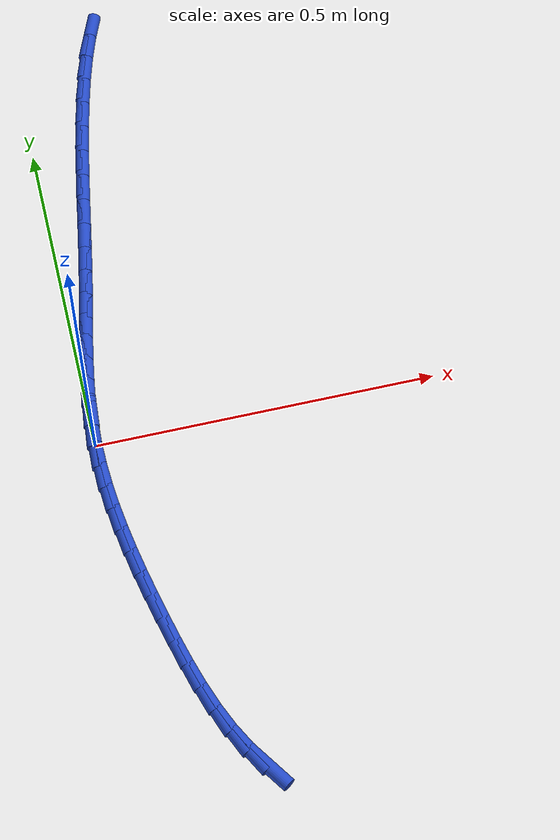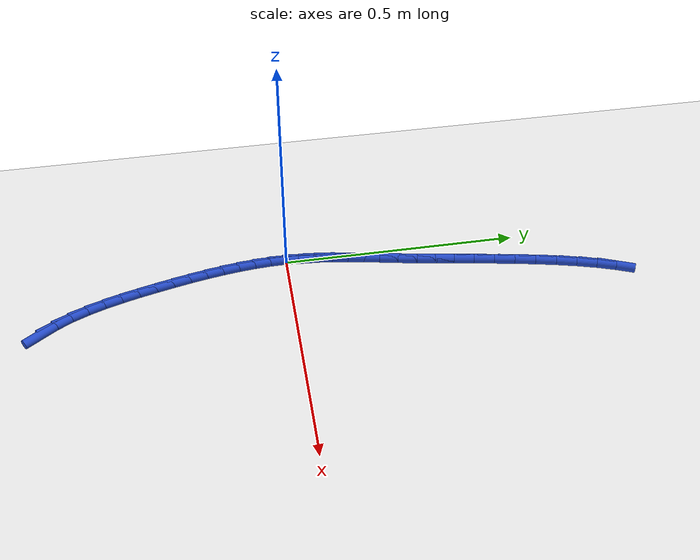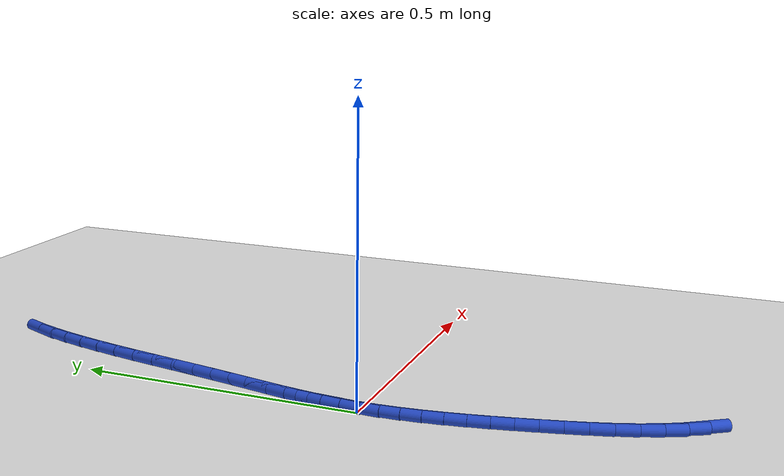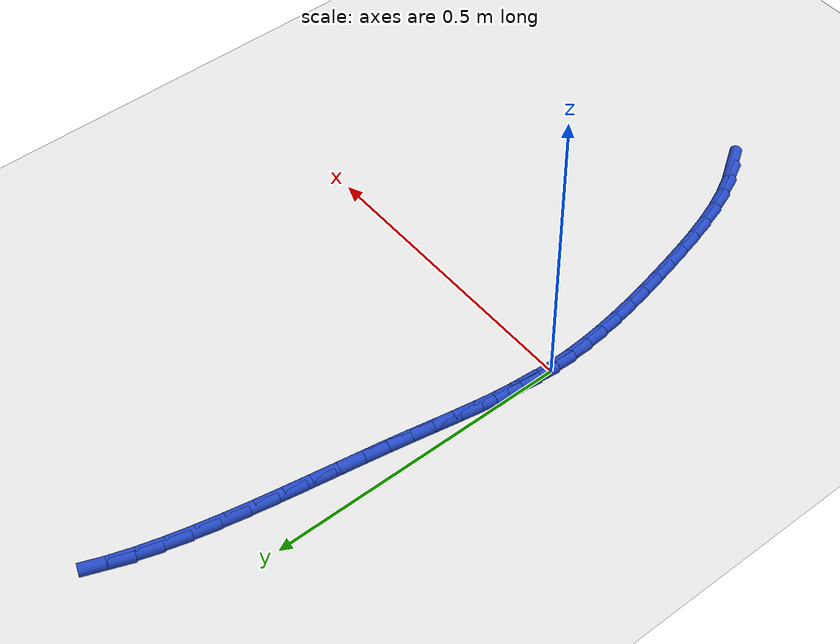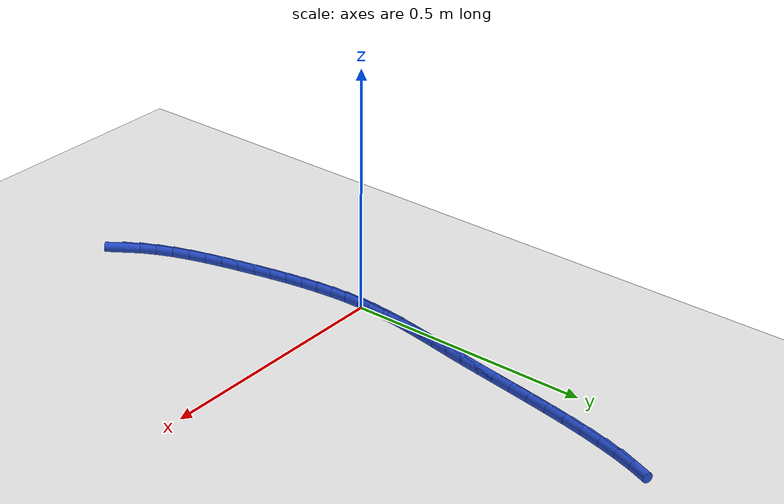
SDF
<sdf version="1.6">
 <world name="default">
  <model name="ground_plane">
   <static>1</static>
   <link name="link">
    <collision name="collision">
     <geometry><plane><normal>0 0 1</normal><size>100 100</size></plane></geometry>
     <surface><friction><ode><mu>100</mu><mu2>50</mu2></ode></friction></surface>
    </collision>
    <visual name="visual">
     <cast_shadows>0</cast_shadows>
     <geometry><plane><normal>0 0 1</normal><size>100 100</size></plane></geometry>
     <material>
      <script><uri>file://media/materials/scripts/gazebo.material</uri><name>Gazebo/WhiteGlow</name></script>
     </material>
    </visual>
   </link>
  </model>
  <model name="line">
   <link name="link_0">
    <pose>-2.2551405187698492e-17 -2.7755575615628914e-17 0.01 0 1.57 1.5317768246908199</pose>
    <collision name="collision">
     <geometry><cylinder><radius>0.01</radius><length>0.08</length></cylinder></geometry>
    </collision>
    <visual name="visual">
     <material>
      <script><name>Gazebo/Blue</name><uri>file://media/materials/scripts/gazebo.material</uri></script>
     </material>
     <geometry><cylinder><radius>0.01</radius><length>0.08</length></cylinder></geometry>
    </visual>
   </link>
   <link name="link_1">
    <pose>0.0012909038700178494 0.0330667638219513 0.01 0 1.57 1.4855187835141996</pose>
    <collision name="collision">
     <geometry><cylinder><radius>0.01</radius><length>0.08</length></cylinder></geometry>
    </collision>
    <visual name="visual">
     <material>
      <script><name>Gazebo/Blue</name><uri>file://media/materials/scripts/gazebo.material</uri></script>
     </material>
     <geometry><cylinder><radius>0.01</radius><length>0.08</length></cylinder></geometry>
    </visual>
   </link>
   <link name="link_2">
    <pose>0.004107158025258242 0.06601124007584636 0.01 0 1.57 1.4474695632081067</pose>
    <collision name="collision">
     <geometry><cylinder><radius>0.01</radius><length>0.08</length></cylinder></geometry>
    </collision>
    <visual name="visual">
     <material>
      <script><name>Gazebo/Blue</name><uri>file://media/materials/scripts/gazebo.material</uri></script>
     </material>
     <geometry><cylinder><radius>0.01</radius><length>0.08</length></cylinder></geometry>
    </visual>
   </link>
   <link name="link_3">
    <pose>0.008212593873302988 0.09913138959905807 0.01 0 1.57 1.4184327268474815</pose>
    <collision name="collision">
     <geometry><cylinder><radius>0.01</radius><length>0.08</length></cylinder></geometry>
    </collision>
    <visual name="visual">
     <material>
      <script><name>Gazebo/Blue</name><uri>file://media/materials/scripts/gazebo.material</uri></script>
     </material>
     <geometry><cylinder><radius>0.01</radius><length>0.08</length></cylinder></geometry>
    </visual>
   </link>
   <link name="link_4">
    <pose>0.013371042821733915 0.1327251732289593 0.01 0 1.57 1.3986420646731026</pose>
    <collision name="collision">
     <geometry><cylinder><radius>0.01</radius><length>0.08</length></cylinder></geometry>
    </collision>
    <visual name="visual">
     <material>
      <script><name>Gazebo/Blue</name><uri>file://media/materials/scripts/gazebo.material</uri></script>
     </material>
     <geometry><cylinder><radius>0.01</radius><length>0.08</length></cylinder></geometry>
    </visual>
   </link>
   <link name="link_5">
    <pose>0.019346336278132866 0.16709055180292298 0.01 0 1.57 1.3878507393659656</pose>
    <collision name="collision">
     <geometry><cylinder><radius>0.01</radius><length>0.08</length></cylinder></geometry>
    </collision>
    <visual name="visual">
     <material>
      <script><name>Gazebo/Blue</name><uri>file://media/materials/scripts/gazebo.material</uri></script>
     </material>
     <geometry><cylinder><radius>0.01</radius><length>0.08</length></cylinder></geometry>
    </visual>
   </link>
   <link name="link_6">
    <pose>0.02590230565008166 0.2025254861583219 0.01 0 1.57 1.38544792695444</pose>
    <collision name="collision">
     <geometry><cylinder><radius>0.01</radius><length>0.08</length></cylinder></geometry>
    </collision>
    <visual name="visual">
     <material>
      <script><name>Gazebo/Blue</name><uri>file://media/materials/scripts/gazebo.material</uri></script>
     </material>
     <geometry><cylinder><radius>0.01</radius><length>0.08</length></cylinder></geometry>
    </visual>
   </link>
   <link name="link_7">
    <pose>0.03280278234516214 0.23932793713252892 0.01 0 1.57 1.3905742868097946</pose>
    <collision name="collision">
     <geometry><cylinder><radius>0.01</radius><length>0.08</length></cylinder></geometry>
    </collision>
    <visual name="visual">
     <material>
      <script><name>Gazebo/Blue</name><uri>file://media/materials/scripts/gazebo.material</uri></script>
     </material>
     <geometry><cylinder><radius>0.01</radius><length>0.08</length></cylinder></geometry>
    </visual>
   </link>
   <link name="link_8">
    <pose>0.03981159777095613 0.277795865562917 0.01 0 1.57 1.400694542232976</pose>
    <collision name="collision">
     <geometry><cylinder><radius>0.01</radius><length>0.08</length></cylinder></geometry>
    </collision>
    <visual name="visual">
     <material>
      <script><name>Gazebo/Blue</name><uri>file://media/materials/scripts/gazebo.material</uri></script>
     </material>
     <geometry><cylinder><radius>0.01</radius><length>0.08</length></cylinder></geometry>
    </visual>
   </link>
   <link name="link_9">
    <pose>0.0467401160785049 0.3181338572605922 0.01 0 1.57 1.4072329902828762</pose>
    <collision name="collision">
     <geometry><cylinder><radius>0.01</radius><length>0.08</length></cylinder></geometry>
    </collision>
    <visual name="visual">
     <material>
      <script><name>Gazebo/Blue</name><uri>file://media/materials/scripts/gazebo.material</uri></script>
     </material>
     <geometry><cylinder><radius>0.01</radius><length>0.08</length></cylinder></geometry>
    </visual>
   </link>
   <link name="link_10">
    <pose>0.05365653463498634 0.36004196565418894 0.01 0 1.57 1.4081199562918991</pose>
    <collision name="collision">
     <geometry><cylinder><radius>0.01</radius><length>0.08</length></cylinder></geometry>
    </collision>
    <visual name="visual">
     <material>
      <script><name>Gazebo/Blue</name><uri>file://media/materials/scripts/gazebo.material</uri></script>
     </material>
     <geometry><cylinder><radius>0.01</radius><length>0.08</length></cylinder></geometry>
    </visual>
   </link>
   <link name="link_11">
    <pose>0.06071540281543947 0.40305061119062474 0.01 0 1.57 1.4038046841401903</pose>
    <collision name="collision">
     <geometry><cylinder><radius>0.01</radius><length>0.08</length></cylinder></geometry>
    </collision>
    <visual name="visual">
     <material>
      <script><name>Gazebo/Blue</name><uri>file://media/materials/scripts/gazebo.material</uri></script>
     </material>
     <geometry><cylinder><radius>0.01</radius><length>0.08</length></cylinder></geometry>
    </visual>
   </link>
   <link name="link_12">
    <pose>0.06807133447739407 0.446690087645099 0.01 0 1.57 1.3943956237105248</pose>
    <collision name="collision">
     <geometry><cylinder><radius>0.01</radius><length>0.08</length></cylinder></geometry>
    </collision>
    <visual name="visual">
     <material>
      <script><name>Gazebo/Blue</name><uri>file://media/materials/scripts/gazebo.material</uri></script>
     </material>
     <geometry><cylinder><radius>0.01</radius><length>0.08</length></cylinder></geometry>
    </visual>
   </link>
   <link name="link_13">
    <pose>0.07587894347837983 0.4904906887928109 0.01 0 1.57 1.3796985251317877</pose>
    <collision name="collision">
     <geometry><cylinder><radius>0.01</radius><length>0.08</length></cylinder></geometry>
    </collision>
    <visual name="visual">
     <material>
      <script><name>Gazebo/Blue</name><uri>file://media/materials/scripts/gazebo.material</uri></script>
     </material>
     <geometry><cylinder><radius>0.01</radius><length>0.08</length></cylinder></geometry>
    </visual>
   </link>
   <link name="link_14">
    <pose>0.08429284367592652 0.53398270840896 0.01 0 1.57 1.3592136734023892</pose>
    <collision name="collision">
     <geometry><cylinder><radius>0.01</radius><length>0.08</length></cylinder></geometry>
    </collision>
    <visual name="visual">
     <material>
      <script><name>Gazebo/Blue</name><uri>file://media/materials/scripts/gazebo.material</uri></script>
     </material>
     <geometry><cylinder><radius>0.01</radius><length>0.08</length></cylinder></geometry>
    </visual>
   </link>
   <link name="link_15">
    <pose>0.0934676489275639 0.5766964402687462 0.01 0 1.57 1.3320944818567027</pose>
    <collision name="collision">
     <geometry><cylinder><radius>0.01</radius><length>0.08</length></cylinder></geometry>
    </collision>
    <visual name="visual">
     <material>
      <script><name>Gazebo/Blue</name><uri>file://media/materials/scripts/gazebo.material</uri></script>
     </material>
     <geometry><cylinder><radius>0.01</radius><length>0.08</length></cylinder></geometry>
    </visual>
   </link>
   <link name="link_16">
    <pose>0.10355797309082168 0.6181621781473685 0.01 0 1.57 1.2970644085488432</pose>
    <collision name="collision">
     <geometry><cylinder><radius>0.01</radius><length>0.08</length></cylinder></geometry>
    </collision>
    <visual name="visual">
     <material>
      <script><name>Gazebo/Blue</name><uri>file://media/materials/scripts/gazebo.material</uri></script>
     </material>
     <geometry><cylinder><radius>0.01</radius><length>0.08</length></cylinder></geometry>
    </visual>
   </link>
   <link name="link_17">
    <pose>0.11471843002322968 0.6579102158200267 0.01 0 1.57 1.2522841872776282</pose>
    <collision name="collision">
     <geometry><cylinder><radius>0.01</radius><length>0.08</length></cylinder></geometry>
    </collision>
    <visual name="visual">
     <material>
      <script><name>Gazebo/Blue</name><uri>file://media/materials/scripts/gazebo.material</uri></script>
     </material>
     <geometry><cylinder><radius>0.01</radius><length>0.08</length></cylinder></geometry>
    </visual>
   </link>
   <link name="link_18">
    <pose>0.12710363358231758 0.6954708470619201 0.01 0 1.57 1.195161145644118</pose>
    <collision name="collision">
     <geometry><cylinder><radius>0.01</radius><length>0.08</length></cylinder></geometry>
    </collision>
    <visual name="visual">
     <material>
      <script><name>Gazebo/Blue</name><uri>file://media/materials/scripts/gazebo.material</uri></script>
     </material>
     <geometry><cylinder><radius>0.01</radius><length>0.08</length></cylinder></geometry>
    </visual>
   </link>
   <link name="link_205">
    <pose>0.13202160627710371 -0.5114043000795069 0.01 0 1.57 -0.9703683580011183</pose>
    <collision name="collision">
     <geometry><cylinder><radius>0.01</radius><length>0.08</length></cylinder></geometry>
    </collision>
    <visual name="visual">
     <material>
      <script><name>Gazebo/Blue</name><uri>file://media/materials/scripts/gazebo.material</uri></script>
     </material>
     <geometry><cylinder><radius>0.01</radius><length>0.08</length></cylinder></geometry>
    </visual>
   </link>
   <link name="link_206">
    <pose>0.11292887295930482 -0.4835221422355177 0.01 0 1.57 -1.0739233353456168</pose>
    <collision name="collision">
     <geometry><cylinder><radius>0.01</radius><length>0.08</length></cylinder></geometry>
    </collision>
    <visual name="visual">
     <material>
      <script><name>Gazebo/Blue</name><uri>file://media/materials/scripts/gazebo.material</uri></script>
     </material>
     <geometry><cylinder><radius>0.01</radius><length>0.08</length></cylinder></geometry>
    </visual>
   </link>
   <link name="link_207">
    <pose>0.09637199690348572 -0.4529884362444722 0.01 0 1.57 -1.1567231849061286</pose>
    <collision name="collision">
     <geometry><cylinder><radius>0.01</radius><length>0.08</length></cylinder></geometry>
    </collision>
    <visual name="visual">
     <material>
      <script><name>Gazebo/Blue</name><uri>file://media/materials/scripts/gazebo.material</uri></script>
     </material>
     <geometry><cylinder><radius>0.01</radius><length>0.08</length></cylinder></geometry>
    </visual>
   </link>
   <link name="link_208">
    <pose>0.08200841040329689 -0.4203054740815968 0.01 0 1.57 -1.2212728793900365</pose>
    <collision name="collision">
     <geometry><cylinder><radius>0.01</radius><length>0.08</length></cylinder></geometry>
    </collision>
    <visual name="visual">
     <material>
      <script><name>Gazebo/Blue</name><uri>file://media/materials/scripts/gazebo.material</uri></script>
     </material>
     <geometry><cylinder><radius>0.01</radius><length>0.08</length></cylinder></geometry>
    </visual>
   </link>
   <link name="link_209">
    <pose>0.06949554575238753 -0.38597554772211634 0.01 0 1.57 -1.2699956010424625</pose>
    <collision name="collision">
     <geometry><cylinder><radius>0.01</radius><length>0.08</length></cylinder></geometry>
    </collision>
    <visual name="visual">
     <material>
      <script><name>Gazebo/Blue</name><uri>file://media/materials/scripts/gazebo.material</uri></script>
     </material>
     <geometry><cylinder><radius>0.01</radius><length>0.08</length></cylinder></geometry>
    </visual>
   </link>
   <link name="link_210">
    <pose>0.0584908352444073 -0.35050094914125596 0.01 0 1.57 -1.3048267765265191</pose>
    <collision name="collision">
     <geometry><cylinder><radius>0.01</radius><length>0.08</length></cylinder></geometry>
    </collision>
    <visual name="visual">
     <material>
      <script><name>Gazebo/Blue</name><uri>file://media/materials/scripts/gazebo.material</uri></script>
     </material>
     <geometry><cylinder><radius>0.01</radius><length>0.08</length></cylinder></geometry>
    </visual>
   </link>
   <link name="link_211">
    <pose>0.04865171117300585 -0.31438397031424076 0.01 0 1.57 -1.327070898195561</pose>
    <collision name="collision">
     <geometry><cylinder><radius>0.01</radius><length>0.08</length></cylinder></geometry>
    </collision>
    <visual name="visual">
     <material>
      <script><name>Gazebo/Blue</name><uri>file://media/materials/scripts/gazebo.material</uri></script>
     </material>
     <geometry><cylinder><radius>0.01</radius><length>0.08</length></cylinder></geometry>
    </visual>
   </link>
   <link name="link_212">
    <pose>0.03963568776117555 -0.2781268225361479 0.01 0 1.57 -1.340907075148443</pose>
    <collision name="collision">
     <geometry><cylinder><radius>0.01</radius><length>0.08</length></cylinder></geometry>
    </collision>
    <visual name="visual">
     <material>
      <script><name>Gazebo/Blue</name><uri>file://media/materials/scripts/gazebo.material</uri></script>
     </material>
     <geometry><cylinder><radius>0.01</radius><length>0.08</length></cylinder></geometry>
    </visual>
   </link>
   <link name="link_213">
    <pose>0.03120999526773315 -0.24212367393183368 0.01 0 1.57 -1.3571081445848423</pose>
    <collision name="collision">
     <geometry><cylinder><radius>0.01</radius><length>0.08</length></cylinder></geometry>
    </collision>
    <visual name="visual">
     <material>
      <script><name>Gazebo/Blue</name><uri>file://media/materials/scripts/gazebo.material</uri></script>
     </material>
     <geometry><cylinder><radius>0.01</radius><length>0.08</length></cylinder></geometry>
    </visual>
   </link>
   <link name="link_214">
    <pose>0.023468187832552653 -0.20644734428026612 0.01 0 1.57 -1.3778471309376883</pose>
    <collision name="collision">
     <geometry><cylinder><radius>0.01</radius><length>0.08</length></cylinder></geometry>
    </collision>
    <visual name="visual">
     <material>
      <script><name>Gazebo/Blue</name><uri>file://media/materials/scripts/gazebo.material</uri></script>
     </material>
     <geometry><cylinder><radius>0.01</radius><length>0.08</length></cylinder></geometry>
    </visual>
   </link>
   <link name="link_215">
    <pose>0.01656421314411676 -0.17111118064611427 0.01 0 1.57 -1.4033747313200817</pose>
    <collision name="collision">
     <geometry><cylinder><radius>0.01</radius><length>0.08</length></cylinder></geometry>
    </collision>
    <visual name="visual">
     <material>
      <script><name>Gazebo/Blue</name><uri>file://media/materials/scripts/gazebo.material</uri></script>
     </material>
     <geometry><cylinder><radius>0.01</radius><length>0.08</length></cylinder></geometry>
    </visual>
   </link>
   <link name="link_216">
    <pose>0.010652018890908012 -0.13612853009404616 0.01 0 1.57 -1.433960515552602</pose>
    <collision name="collision">
     <geometry><cylinder><radius>0.01</radius><length>0.08</length></cylinder></geometry>
    </collision>
    <visual name="visual">
     <material>
      <script><name>Gazebo/Blue</name><uri>file://media/materials/scripts/gazebo.material</uri></script>
     </material>
     <geometry><cylinder><radius>0.01</radius><length>0.08</length></cylinder></geometry>
    </visual>
   </link>
   <link name="link_217">
    <pose>0.005885552761409372 -0.10151273968873234 0.01 0 1.57 -1.4698775543690172</pose>
    <collision name="collision">
     <geometry><cylinder><radius>0.01</radius><length>0.08</length></cylinder></geometry>
    </collision>
    <visual name="visual">
     <material>
      <script><name>Gazebo/Blue</name><uri>file://media/materials/scripts/gazebo.material</uri></script>
     </material>
     <geometry><cylinder><radius>0.01</radius><length>0.08</length></cylinder></geometry>
    </visual>
   </link>
   <link name="link_218">
    <pose>0.0024187624441033674 -0.0672771564948409 0.01 0 1.57 -1.5113791692137974</pose>
    <collision name="collision">
     <geometry><cylinder><radius>0.01</radius><length>0.08</length></cylinder></geometry>
    </collision>
    <visual name="visual">
     <material>
      <script><name>Gazebo/Blue</name><uri>file://media/materials/scripts/gazebo.material</uri></script>
     </material>
     <geometry><cylinder><radius>0.01</radius><length>0.08</length></cylinder></geometry>
    </visual>
   </link>
   <link name="link_219">
    <pose>0.00040559562747267096 -0.03343512757704077 0.01 0 1.57 -1.558666098402632</pose>
    <collision name="collision">
     <geometry><cylinder><radius>0.01</radius><length>0.08</length></cylinder></geometry>
    </collision>
    <visual name="visual">
     <material>
      <script><name>Gazebo/Blue</name><uri>file://media/materials/scripts/gazebo.material</uri></script>
     </material>
     <geometry><cylinder><radius>0.01</radius><length>0.08</length></cylinder></geometry>
    </visual>
   </link>
   <link name="link_220">
    <pose>-2.949029909160572e-17 -2.0816681711721685e-17 0.01 0 1.57 1.5297493295977853</pose>
    <collision name="collision">
     <geometry><cylinder><radius>0.01</radius><length>0.08</length></cylinder></geometry>
    </collision>
    <visual name="visual">
     <material>
      <script><name>Gazebo/Blue</name><uri>file://media/materials/scripts/gazebo.material</uri></script>
     </material>
     <geometry><cylinder><radius>0.01</radius><length>0.08</length></cylinder></geometry>
    </visual>
   </link>
   <link name="link_221">
    <pose>0.0013559232501679144 0.03301487917161 0.01 0 1.57 1.470724694022672</pose>
    <collision name="collision">
     <geometry><cylinder><radius>0.01</radius><length>0.08</length></cylinder></geometry>
    </collision>
    <visual name="visual">
     <material>
      <script><name>Gazebo/Blue</name><uri>file://media/materials/scripts/gazebo.material</uri></script>
     </material>
     <geometry><cylinder><radius>0.01</radius><length>0.08</length></cylinder></geometry>
    </visual>
   </link>
   <link name="link_222">
    <pose>0.004627313066459315 0.0655961628731236 0.01 0 1.57 1.5003705554163689</pose>
    <collision name="collision">
     <geometry><cylinder><radius>0.01</radius><length>0.08</length></cylinder></geometry>
    </collision>
    <visual name="visual">
     <material>
      <script><name>Gazebo/Blue</name><uri>file://media/materials/scripts/gazebo.material</uri></script>
     </material>
     <geometry><cylinder><radius>0.01</radius><length>0.08</length></cylinder></geometry>
    </visual>
   </link>
  </model>
 </world>
</sdf>
